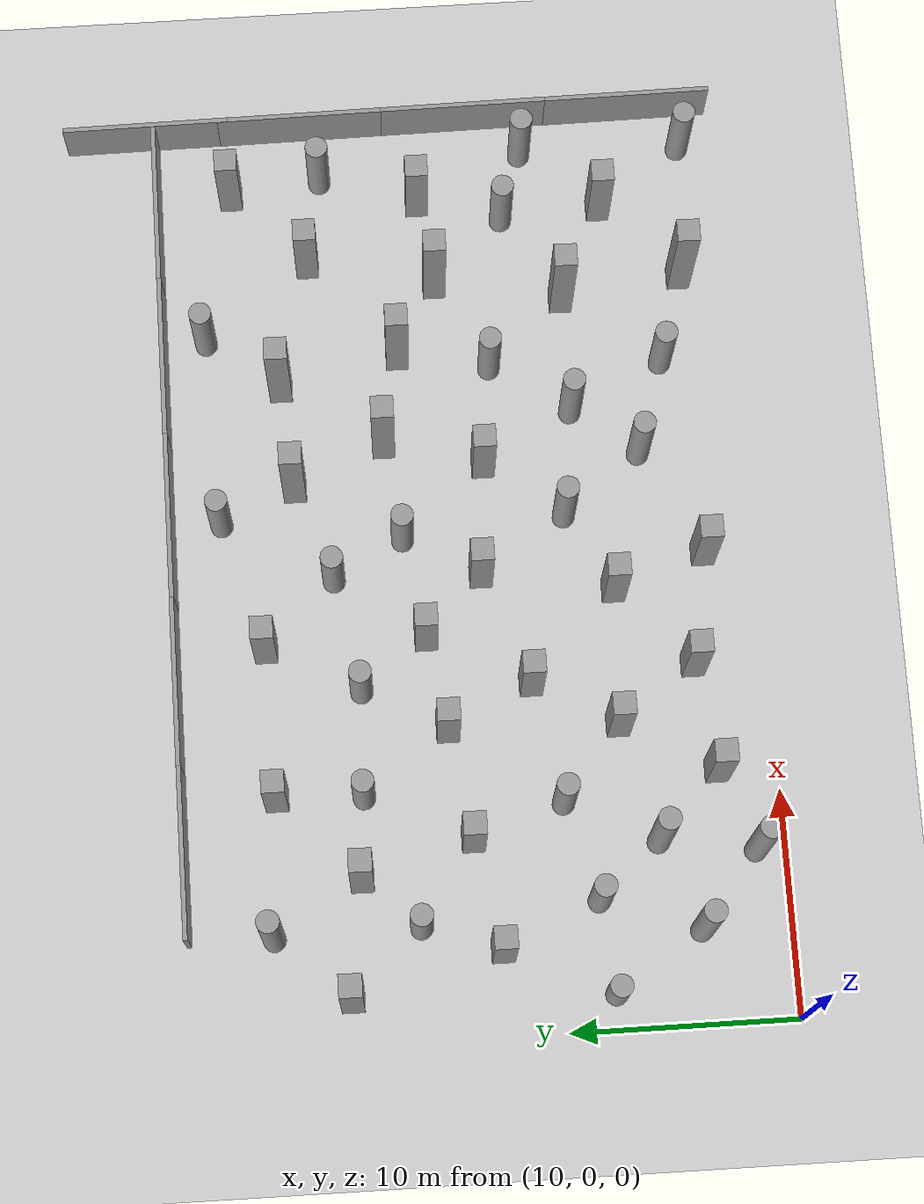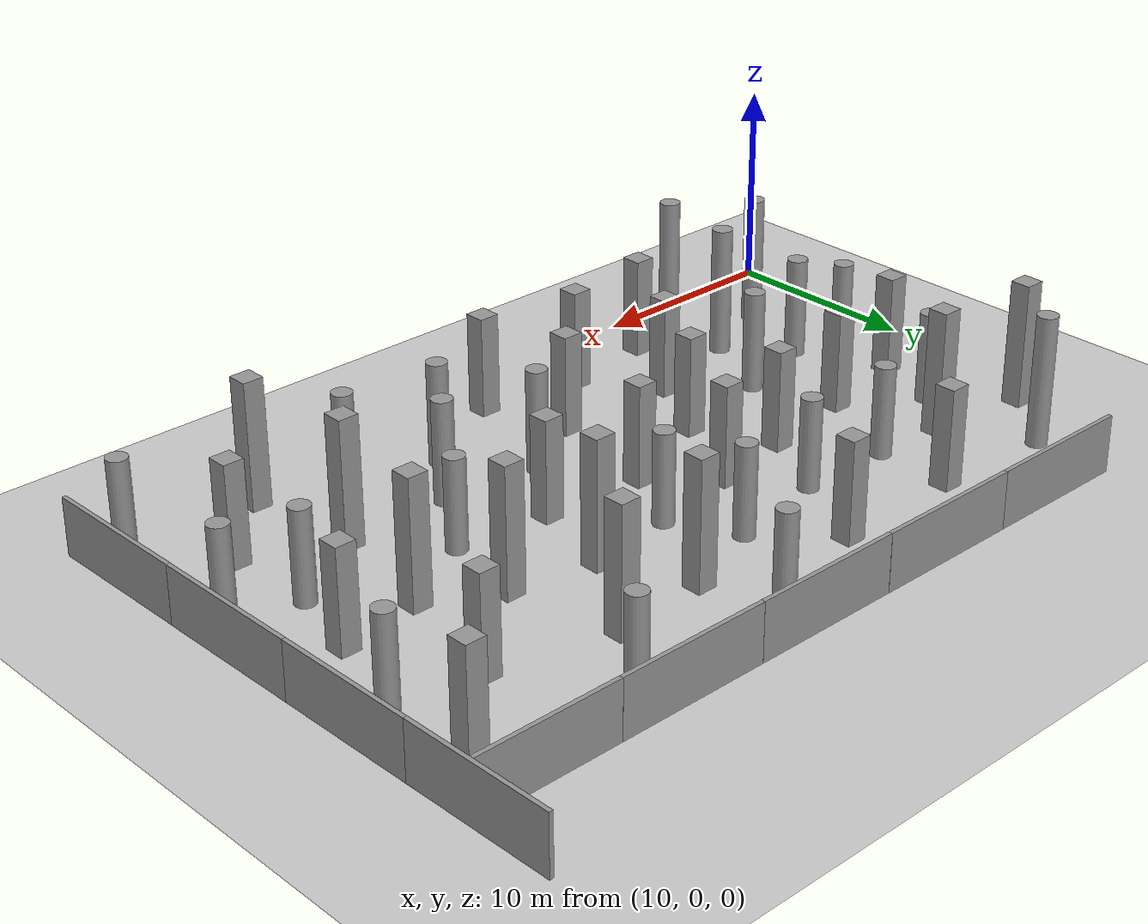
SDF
<sdf version="1.7">
 <world name="default">
  <model name="ground_plane">
   <static>1</static>
   <link name="link">
    <collision name="collision">
     <geometry><plane><normal>0 0 1</normal><size>400 400</size></plane></geometry>
     <surface><friction><ode><mu>100</mu><mu2>50</mu2></ode></friction></surface>
    </collision>
    <visual name="visual">
     <cast_shadows>0</cast_shadows>
     <geometry><plane><normal>0 0 1</normal><size>100 100</size></plane></geometry>
     <material>
      <script><uri>file://media/materials/scripts/gazebo.material</uri><name>Gazebo/Grey</name></script>
     </material>
    </visual>
   </link>
  </model>
  <model name="unit_cylinder_23">
   <pose>11.5428 7.81955 1.72625 1e-06 0 5.3e-05</pose>
   <link name="link">
    <inertial>
     <mass>1</mass>
     <inertia><ixx>0.145833</ixx><ixy>0</ixy><ixz>0</ixz><iyy>0.145833</iyy><iyz>0</iyz><izz>0.125</izz></inertia>
    </inertial>
    <collision name="collision">
     <geometry><cylinder><radius>0.5</radius><length>3.45257</length></cylinder></geometry>
    </collision>
    <visual name="visual">
     <geometry><cylinder><radius>0.5</radius><length>3.45257</length></cylinder></geometry>
     <material>
      <script><name>Gazebo/Grey</name><uri>file://media/materials/scripts/gazebo.material</uri></script>
     </material>
    </visual>
   </link>
  </model>
  <model name="unit_box_1_clone_2">
   <pose>13.6783 12.5927 2.48504 -2e-06 0 0.000428</pose>
   <link name="link">
    <inertial>
     <mass>1</mass>
     <inertia>
      <ixx>0.166667</ixx>
      <ixy>0</ixy>
      <ixz>0</ixz>
      <iyy>0.166667</iyy>
      <iyz>0</iyz>
      <izz>0.166667</izz>
     </inertia>
    </inertial>
    <collision name="collision"><geometry><box><size>1 1 4.97009</size></box></geometry></collision>
    <visual name="visual">
     <geometry><box><size>1 1 4.97009</size></box></geometry>
     <material>
      <script><name>Gazebo/Grey</name><uri>file://media/materials/scripts/gazebo.material</uri></script>
     </material>
    </visual>
   </link>
  </model>
  <model name="unit_box_1_clone_3">
   <pose>18.5455 13.5678 2.48504 -0 2e-06 -0.001973</pose>
   <link name="link">
    <inertial>
     <mass>1</mass>
     <inertia>
      <ixx>0.166667</ixx>
      <ixy>0</ixy>
      <ixz>0</ixz>
      <iyy>0.166667</iyy>
      <iyz>0</iyz>
      <izz>0.166667</izz>
     </inertia>
    </inertial>
    <collision name="collision"><geometry><box><size>1 1 4.97009</size></box></geometry></collision>
    <visual name="visual">
     <geometry><box><size>1 1 4.97009</size></box></geometry>
     <material>
      <script><name>Gazebo/Grey</name><uri>file://media/materials/scripts/gazebo.material</uri></script>
     </material>
    </visual>
   </link>
  </model>
  <model name="unit_box_1_clone_4">
   <pose>25.3258 10.5912 2.48504 2e-06 -0 8.3e-05</pose>
   <link name="link">
    <inertial>
     <mass>1</mass>
     <inertia>
      <ixx>0.166667</ixx>
      <ixy>0</ixy>
      <ixz>0</ixz>
      <iyy>0.166667</iyy>
      <iyz>0</iyz>
      <izz>0.166667</izz>
     </inertia>
    </inertial>
    <collision name="collision"><geometry><box><size>1 1 4.97009</size></box></geometry></collision>
    <visual name="visual">
     <geometry><box><size>1 1 4.97009</size></box></geometry>
     <material>
      <script><name>Gazebo/Grey</name><uri>file://media/materials/scripts/gazebo.material</uri></script>
     </material>
    </visual>
   </link>
  </model>
  <model name="unit_box_1_clone_5">
   <pose>23.4699 14.3709 2.48504 -0 2e-06 -0.000948</pose>
   <link name="link">
    <inertial>
     <mass>1</mass>
     <inertia>
      <ixx>0.166667</ixx>
      <ixy>0</ixy>
      <ixz>0</ixz>
      <iyy>0.166667</iyy>
      <iyz>0</iyz>
      <izz>0.166667</izz>
     </inertia>
    </inertial>
    <collision name="collision"><geometry><box><size>1 1 4.97009</size></box></geometry></collision>
    <visual name="visual">
     <geometry><box><size>1 1 4.97009</size></box></geometry>
     <material>
      <script><name>Gazebo/Grey</name><uri>file://media/materials/scripts/gazebo.material</uri></script>
     </material>
    </visual>
   </link>
  </model>
  <model name="unit_box_1_clone_6">
   <pose>30.3843 12.4735 2.48504 -2e-06 -0 -0.002073</pose>
   <link name="link">
    <inertial>
     <mass>1</mass>
     <inertia>
      <ixx>0.166667</ixx>
      <ixy>0</ixy>
      <ixz>0</ixz>
      <iyy>0.166667</iyy>
      <iyz>0</iyz>
      <izz>0.166667</izz>
     </inertia>
    </inertial>
    <collision name="collision"><geometry><box><size>1 1 4.97009</size></box></geometry></collision>
    <visual name="visual">
     <geometry><box><size>1 1 4.97009</size></box></geometry>
     <material>
      <script><name>Gazebo/Grey</name><uri>file://media/materials/scripts/gazebo.material</uri></script>
     </material>
    </visual>
   </link>
  </model>
  <model name="unit_box_1_clone_7">
   <pose>27.6522 15.0776 2.48504 -0 -2e-06 -0.002553</pose>
   <link name="link">
    <inertial>
     <mass>1</mass>
     <inertia>
      <ixx>0.166667</ixx>
      <ixy>0</ixy>
      <ixz>0</ixz>
      <iyy>0.166667</iyy>
      <iyz>0</iyz>
      <izz>0.166667</izz>
     </inertia>
    </inertial>
    <collision name="collision"><geometry><box><size>1 1 4.97009</size></box></geometry></collision>
    <visual name="visual">
     <geometry><box><size>1 1 4.97009</size></box></geometry>
     <material>
      <script><name>Gazebo/Grey</name><uri>file://media/materials/scripts/gazebo.material</uri></script>
     </material>
    </visual>
   </link>
  </model>
  <model name="unit_box_1_clone_8">
   <pose>35.4718 12.045 2.48504 2e-06 -0 0.000921</pose>
   <link name="link">
    <inertial>
     <mass>1</mass>
     <inertia>
      <ixx>0.166667</ixx>
      <ixy>0</ixy>
      <ixz>0</ixz>
      <iyy>0.166667</iyy>
      <iyz>0</iyz>
      <izz>0.166667</izz>
     </inertia>
    </inertial>
    <collision name="collision"><geometry><box><size>1 1 4.97009</size></box></geometry></collision>
    <visual name="visual">
     <geometry><box><size>1 1 4.97009</size></box></geometry>
     <material>
      <script><name>Gazebo/Grey</name><uri>file://media/materials/scripts/gazebo.material</uri></script>
     </material>
    </visual>
   </link>
  </model>
  <model name="unit_cylinder_27_clone">
   <pose>14.8751 16.0271 2.257 2e-06 -0 -0.000756</pose>
   <link name="link">
    <inertial>
     <mass>1</mass>
     <inertia><ixx>0.145833</ixx><ixy>0</ixy><ixz>0</ixz><iyy>0.145833</iyy><iyz>0</iyz><izz>0.125</izz></inertia>
    </inertial>
    <collision name="collision">
     <geometry><cylinder><radius>0.5</radius><length>4.51407</length></cylinder></geometry>
    </collision>
    <visual name="visual">
     <geometry><cylinder><radius>0.5</radius><length>4.51407</length></cylinder></geometry>
     <material>
      <script><name>Gazebo/Grey</name><uri>file://media/materials/scripts/gazebo.material</uri></script>
     </material>
    </visual>
   </link>
  </model>
  <model name="unit_cylinder_27_clone_1">
   <pose>20.7051 18.1973 2.257 2e-06 -0 -0.000715</pose>
   <link name="link">
    <inertial>
     <mass>1</mass>
     <inertia><ixx>0.145833</ixx><ixy>0</ixy><ixz>0</ixz><iyy>0.145833</iyy><iyz>0</iyz><izz>0.125</izz></inertia>
    </inertial>
    <collision name="collision">
     <geometry><cylinder><radius>0.5</radius><length>4.51407</length></cylinder></geometry>
    </collision>
    <visual name="visual">
     <geometry><cylinder><radius>0.5</radius><length>4.51407</length></cylinder></geometry>
     <material>
      <script><name>Gazebo/Grey</name><uri>file://media/materials/scripts/gazebo.material</uri></script>
     </material>
    </visual>
   </link>
  </model>
  <model name="unit_cylinder_27_clone_2">
   <pose>32.2373 15.8432 2.257 2e-06 0 -0.000722</pose>
   <link name="link">
    <inertial>
     <mass>1</mass>
     <inertia><ixx>0.145833</ixx><ixy>0</ixy><ixz>0</ixz><iyy>0.145833</iyy><iyz>0</iyz><izz>0.125</izz></inertia>
    </inertial>
    <collision name="collision">
     <geometry><cylinder><radius>0.5</radius><length>4.51407</length></cylinder></geometry>
    </collision>
    <visual name="visual">
     <geometry><cylinder><radius>0.5</radius><length>4.51407</length></cylinder></geometry>
     <material>
      <script><name>Gazebo/Grey</name><uri>file://media/materials/scripts/gazebo.material</uri></script>
     </material>
    </visual>
   </link>
  </model>
  <model name="unit_cylinder_27_clone_3">
   <pose>25.4299 18.0464 2.257 2e-06 0 -0.000741</pose>
   <link name="link">
    <inertial>
     <mass>1</mass>
     <inertia><ixx>0.145833</ixx><ixy>0</ixy><ixz>0</ixz><iyy>0.145833</iyy><iyz>0</iyz><izz>0.125</izz></inertia>
    </inertial>
    <collision name="collision">
     <geometry><cylinder><radius>0.5</radius><length>4.51407</length></cylinder></geometry>
    </collision>
    <visual name="visual">
     <geometry><cylinder><radius>0.5</radius><length>4.51407</length></cylinder></geometry>
     <material>
      <script><name>Gazebo/Grey</name><uri>file://media/materials/scripts/gazebo.material</uri></script>
     </material>
    </visual>
   </link>
  </model>
  <model name="unit_cylinder_27_clone_5">
   <pose>30.5383 18.9927 2.257 2e-06 0 -0.000743</pose>
   <link name="link">
    <inertial>
     <mass>1</mass>
     <inertia><ixx>0.145833</ixx><ixy>0</ixy><ixz>0</ixz><iyy>0.145833</iyy><iyz>0</iyz><izz>0.125</izz></inertia>
    </inertial>
    <collision name="collision">
     <geometry><cylinder><radius>0.5</radius><length>4.51407</length></cylinder></geometry>
    </collision>
    <visual name="visual">
     <geometry><cylinder><radius>0.5</radius><length>4.51407</length></cylinder></geometry>
     <material>
      <script><name>Gazebo/Grey</name><uri>file://media/materials/scripts/gazebo.material</uri></script>
     </material>
    </visual>
   </link>
  </model>
  <model name="unit_cylinder_27_clone_6">
   <pose>40.0713 11.4687 2.257 2e-06 -0 -0.000727</pose>
   <link name="link">
    <inertial>
     <mass>1</mass>
     <inertia><ixx>0.145833</ixx><ixy>0</ixy><ixz>0</ixz><iyy>0.145833</iyy><iyz>0</iyz><izz>0.125</izz></inertia>
    </inertial>
    <collision name="collision">
     <geometry><cylinder><radius>0.5</radius><length>4.51407</length></cylinder></geometry>
    </collision>
    <visual name="visual">
     <geometry><cylinder><radius>0.5</radius><length>4.51407</length></cylinder></geometry>
     <material>
      <script><name>Gazebo/Grey</name><uri>file://media/materials/scripts/gazebo.material</uri></script>
     </material>
    </visual>
   </link>
  </model>
  <model name="unit_cylinder_27_clone_7">
   <pose>39.8766 3.70131 2.257 2e-06 0 -0.000729</pose>
   <link name="link">
    <inertial>
     <mass>1</mass>
     <inertia><ixx>0.145833</ixx><ixy>0</ixy><ixz>0</ixz><iyy>0.145833</iyy><iyz>0</iyz><izz>0.125</izz></inertia>
    </inertial>
    <collision name="collision">
     <geometry><cylinder><radius>0.5</radius><length>4.51407</length></cylinder></geometry>
    </collision>
    <visual name="visual">
     <geometry><cylinder><radius>0.5</radius><length>4.51407</length></cylinder></geometry>
     <material>
      <script><name>Gazebo/Grey</name><uri>file://media/materials/scripts/gazebo.material</uri></script>
     </material>
    </visual>
   </link>
  </model>
  <model name="unit_box_8_clone_1">
   <pose>43.9322 2.54455 3.10477 -0 1e-06 -0.00839</pose>
   <link name="link">
    <inertial>
     <mass>1</mass>
     <inertia>
      <ixx>0.166667</ixx>
      <ixy>0</ixy>
      <ixz>0</ixz>
      <iyy>0.166667</iyy>
      <iyz>0</iyz>
      <izz>0.166667</izz>
     </inertia>
    </inertial>
    <collision name="collision"><geometry><box><size>1 1 6.20954</size></box></geometry></collision>
    <visual name="visual">
     <geometry><box><size>1 1 6.20954</size></box></geometry>
     <material>
      <script><name>Gazebo/Grey</name><uri>file://media/materials/scripts/gazebo.material</uri></script>
     </material>
    </visual>
   </link>
  </model>
  <model name="unit_box_8_clone_2">
   <pose>43.1123 8.00654 3.10477 2e-06 2e-06 -0.014033</pose>
   <link name="link">
    <inertial>
     <mass>1</mass>
     <inertia>
      <ixx>0.166667</ixx>
      <ixy>0</ixy>
      <ixz>0</ixz>
      <iyy>0.166667</iyy>
      <iyz>0</iyz>
      <izz>0.166667</izz>
     </inertia>
    </inertial>
    <collision name="collision"><geometry><box><size>1 1 6.20954</size></box></geometry></collision>
    <visual name="visual">
     <geometry><box><size>1 1 6.20954</size></box></geometry>
     <material>
      <script><name>Gazebo/Grey</name><uri>file://media/materials/scripts/gazebo.material</uri></script>
     </material>
    </visual>
   </link>
  </model>
  <model name="unit_box_8_clone_4">
   <pose>36.6569 16.444 3.10477 0 -5e-06 -0.00826</pose>
   <link name="link">
    <inertial>
     <mass>1</mass>
     <inertia>
      <ixx>0.166667</ixx>
      <ixy>0</ixy>
      <ixz>0</ixz>
      <iyy>0.166667</iyy>
      <iyz>0</iyz>
      <izz>0.166667</izz>
     </inertia>
    </inertial>
    <collision name="collision"><geometry><box><size>1 1 6.20954</size></box></geometry></collision>
    <visual name="visual">
     <geometry><box><size>1 1 6.20954</size></box></geometry>
     <material>
      <script><name>Gazebo/Grey</name><uri>file://media/materials/scripts/gazebo.material</uri></script>
     </material>
    </visual>
   </link>
  </model>
  <model name="unit_box_8_clone_5">
   <pose>34.8228 20.5181 3.10477 1e-06 0 -0.007359</pose>
   <link name="link">
    <inertial>
     <mass>1</mass>
     <inertia>
      <ixx>0.166667</ixx>
      <ixy>0</ixy>
      <ixz>0</ixz>
      <iyy>0.166667</iyy>
      <iyz>0</iyz>
      <izz>0.166667</izz>
     </inertia>
    </inertial>
    <collision name="collision"><geometry><box><size>1 1 6.20954</size></box></geometry></collision>
    <visual name="visual">
     <geometry><box><size>1 1 6.20954</size></box></geometry>
     <material>
      <script><name>Gazebo/Grey</name><uri>file://media/materials/scripts/gazebo.material</uri></script>
     </material>
    </visual>
   </link>
  </model>
  <model name="unit_box_8_clone_6">
   <pose>40.8136 15.5915 3.10477 0 -1e-06 -0.005825</pose>
   <link name="link">
    <inertial>
     <mass>1</mass>
     <inertia>
      <ixx>0.166667</ixx>
      <ixy>0</ixy>
      <ixz>0</ixz>
      <iyy>0.166667</iyy>
      <iyz>0</iyz>
      <izz>0.166667</izz>
     </inertia>
    </inertial>
    <collision name="collision"><geometry><box><size>1 1 6.20954</size></box></geometry></collision>
    <visual name="visual">
     <geometry><box><size>1 1 6.20954</size></box></geometry>
     <material>
      <script><name>Gazebo/Grey</name><uri>file://media/materials/scripts/gazebo.material</uri></script>
     </material>
    </visual>
   </link>
  </model>
  <model name="unit_box_8_clone_7">
   <pose>39.5843 20.9218 3.10477 -0 1e-06 -0.008927</pose>
   <link name="link">
    <inertial>
     <mass>1</mass>
     <inertia>
      <ixx>0.166667</ixx>
      <ixy>0</ixy>
      <ixz>0</ixz>
      <iyy>0.166667</iyy>
      <iyz>0</iyz>
      <izz>0.166667</izz>
     </inertia>
    </inertial>
    <collision name="collision"><geometry><box><size>1 1 6.20954</size></box></geometry></collision>
    <visual name="visual">
     <geometry><box><size>1 1 6.20954</size></box></geometry>
     <material>
      <script><name>Gazebo/Grey</name><uri>file://media/materials/scripts/gazebo.material</uri></script>
     </material>
    </visual>
   </link>
  </model>
  <model name="unit_box_8_clone_8">
   <pose>44.1425 13.7168 3.10477 1e-06 -0 -0.009169</pose>
   <link name="link">
    <inertial>
     <mass>1</mass>
     <inertia>
      <ixx>0.166667</ixx>
      <ixy>0</ixy>
      <ixz>0</ixz>
      <iyy>0.166667</iyy>
      <iyz>0</iyz>
      <izz>0.166667</izz>
     </inertia>
    </inertial>
    <collision name="collision"><geometry><box><size>1 1 6.20954</size></box></geometry></collision>
    <visual name="visual">
     <geometry><box><size>1 1 6.20954</size></box></geometry>
     <material>
      <script><name>Gazebo/Grey</name><uri>file://media/materials/scripts/gazebo.material</uri></script>
     </material>
    </visual>
   </link>
  </model>
  <model name="unit_box_8_clone_9">
   <pose>17.0789 18.4775 3.10477 0 -1e-06 -0.010304</pose>
   <link name="link">
    <inertial>
     <mass>1</mass>
     <inertia>
      <ixx>0.166667</ixx>
      <ixy>0</ixy>
      <ixz>0</ixz>
      <iyy>0.166667</iyy>
      <iyz>0</iyz>
      <izz>0.166667</izz>
     </inertia>
    </inertial>
    <collision name="collision"><geometry><box><size>1 1 6.20954</size></box></geometry></collision>
    <visual name="visual">
     <geometry><box><size>1 1 6.20954</size></box></geometry>
     <material>
      <script><name>Gazebo/Grey</name><uri>file://media/materials/scripts/gazebo.material</uri></script>
     </material>
    </visual>
   </link>
  </model>
  <model name="unit_box_8_clone_10">
   <pose>11.9286 19.1593 3.10477 -0 5e-06 -0.00807</pose>
   <link name="link">
    <inertial>
     <mass>1</mass>
     <inertia>
      <ixx>0.166667</ixx>
      <ixy>0</ixy>
      <ixz>0</ixz>
      <iyy>0.166667</iyy>
      <iyz>0</iyz>
      <izz>0.166667</izz>
     </inertia>
    </inertial>
    <collision name="collision"><geometry><box><size>1 1 6.20954</size></box></geometry></collision>
    <visual name="visual">
     <geometry><box><size>1 1 6.20954</size></box></geometry>
     <material>
      <script><name>Gazebo/Grey</name><uri>file://media/materials/scripts/gazebo.material</uri></script>
     </material>
    </visual>
   </link>
  </model>
  <model name="unit_cylinder_17_clone_15">
   <pose>14.7277 22.4029 3.23034 3e-06 -1e-06 0.00718</pose>
   <link name="link">
    <inertial>
     <mass>1</mass>
     <inertia><ixx>0.145833</ixx><ixy>0</ixy><ixz>0</ixz><iyy>0.145833</iyy><iyz>0</iyz><izz>0.125</izz></inertia>
    </inertial>
    <collision name="collision">
     <geometry><cylinder><radius>0.5</radius><length>6.46075</length></cylinder></geometry>
    </collision>
    <visual name="visual">
     <geometry><cylinder><radius>0.5</radius><length>6.46075</length></cylinder></geometry>
     <material>
      <script><name>Gazebo/Grey</name><uri>file://media/materials/scripts/gazebo.material</uri></script>
     </material>
    </visual>
   </link>
  </model>
  <model name="unit_box_1_clone_3_clone">
   <pose>20.8351 21.999 2.48504 0 2e-06 -0.000957</pose>
   <link name="link">
    <inertial>
     <mass>1</mass>
     <inertia>
      <ixx>0.166667</ixx>
      <ixy>0</ixy>
      <ixz>0</ixz>
      <iyy>0.166667</iyy>
      <iyz>0</iyz>
      <izz>0.166667</izz>
     </inertia>
    </inertial>
    <collision name="collision"><geometry><box><size>1 1 4.97009</size></box></geometry></collision>
    <visual name="visual">
     <geometry><box><size>1 1 4.97009</size></box></geometry>
     <material>
      <script><name>Gazebo/Grey</name><uri>file://media/materials/scripts/gazebo.material</uri></script>
     </material>
    </visual>
   </link>
  </model>
  <model name="unit_box_1_clone_3_clone_0">
   <pose>27.5127 22.1575 2.48504 2e-06 0 -0.004486</pose>
   <link name="link">
    <inertial>
     <mass>1</mass>
     <inertia>
      <ixx>0.166667</ixx>
      <ixy>0</ixy>
      <ixz>0</ixz>
      <iyy>0.166667</iyy>
      <iyz>0</iyz>
      <izz>0.166667</izz>
     </inertia>
    </inertial>
    <collision name="collision"><geometry><box><size>1 1 4.97009</size></box></geometry></collision>
    <visual name="visual">
     <geometry><box><size>1 1 4.97009</size></box></geometry>
     <material>
      <script><name>Gazebo/Grey</name><uri>file://media/materials/scripts/gazebo.material</uri></script>
     </material>
    </visual>
   </link>
  </model>
  <model name="unit_box_1_clone_3_clone_1">
   <pose>45.4529 19.4287 2.48504 2e-06 -0 -0.002299</pose>
   <link name="link">
    <inertial>
     <mass>1</mass>
     <inertia>
      <ixx>0.166667</ixx>
      <ixy>0</ixy>
      <ixz>0</ixz>
      <iyy>0.166667</iyy>
      <iyz>0</iyz>
      <izz>0.166667</izz>
     </inertia>
    </inertial>
    <collision name="collision"><geometry><box><size>1 1 4.97009</size></box></geometry></collision>
    <visual name="visual">
     <geometry><box><size>1 1 4.97009</size></box></geometry>
     <material>
      <script><name>Gazebo/Grey</name><uri>file://media/materials/scripts/gazebo.material</uri></script>
     </material>
    </visual>
   </link>
  </model>
  <model name="grey_wall_clone_6_clone_1">
   <static>1</static>
   <link name="link">
    <pose>0 0 1.4 0 -0 0</pose>
    <collision name="collision"><geometry><box><size>7.5 0.2 2.8</size></box></geometry></collision>
    <visual name="visual">
     <cast_shadows>0</cast_shadows>
     <geometry><box><size>7.5 0.2 2.8</size></box></geometry>
     <material>
      <script>
       <uri>model://grey_wall/materials/scripts</uri>
       <uri>model://grey_wall/materials/textures</uri>
       <name>vrc/grey_wall</name>
      </script>
     </material>
    </visual>
   </link>
   <pose>51.9899 4.42276 0 0 0 -1.56033</pose>
  </model>
  <model name="grey_wall_clone_6_clone_2">
   <static>1</static>
   <link name="link">
    <pose>0 0 1.4 0 -0 0</pose>
    <collision name="collision"><geometry><box><size>7.5 0.2 2.8</size></box></geometry></collision>
    <visual name="visual">
     <cast_shadows>0</cast_shadows>
     <geometry><box><size>7.5 0.2 2.8</size></box></geometry>
     <material>
      <script>
       <uri>model://grey_wall/materials/scripts</uri>
       <uri>model://grey_wall/materials/textures</uri>
       <name>vrc/grey_wall</name>
      </script>
     </material>
    </visual>
   </link>
   <pose>51.9196 11.9192 0 0 0 -1.56033</pose>
  </model>
  <model name="grey_wall_clone_6_clone_3">
   <static>1</static>
   <link name="link">
    <pose>0 0 1.4 0 -0 0</pose>
    <collision name="collision"><geometry><box><size>7.5 0.2 2.8</size></box></geometry></collision>
    <visual name="visual">
     <cast_shadows>0</cast_shadows>
     <geometry><box><size>7.5 0.2 2.8</size></box></geometry>
     <material>
      <script>
       <uri>model://grey_wall/materials/scripts</uri>
       <uri>model://grey_wall/materials/textures</uri>
       <name>vrc/grey_wall</name>
      </script>
     </material>
    </visual>
   </link>
   <pose>51.8424 19.3921 0 0 0 -1.56033</pose>
  </model>
  <model name="grey_wall_clone_6_clone_11">
   <static>1</static>
   <link name="link">
    <pose>0 0 1.4 0 -0 0</pose>
    <collision name="collision"><geometry><box><size>7.5 0.2 2.8</size></box></geometry></collision>
    <visual name="visual">
     <cast_shadows>0</cast_shadows>
     <geometry><box><size>7.5 0.2 2.8</size></box></geometry>
     <material>
      <script>
       <uri>model://grey_wall/materials/scripts</uri>
       <uri>model://grey_wall/materials/textures</uri>
       <name>vrc/grey_wall</name>
      </script>
     </material>
    </visual>
   </link>
   <pose>51.7734 26.4227 0.01006 0 0 -1.56033</pose>
  </model>
  <model name="grey_wall_clone_5_clone_2">
   <static>1</static>
   <link name="link">
    <pose>0 0 1.4 0 -0 0</pose>
    <collision name="collision"><geometry><box><size>7.5 0.2 2.8</size></box></geometry></collision>
    <visual name="visual">
     <cast_shadows>0</cast_shadows>
     <geometry><box><size>7.5 0.2 2.8</size></box></geometry>
     <material>
      <script>
       <uri>model://grey_wall/materials/scripts</uri>
       <uri>model://grey_wall/materials/textures</uri>
       <name>vrc/grey_wall</name>
      </script>
     </material>
    </visual>
   </link>
   <pose>18.3939 26.0838 0 0 -0 0</pose>
  </model>
  <model name="grey_wall_clone_5_clone_3">
   <static>1</static>
   <link name="link">
    <pose>0 0 1.4 0 -0 0</pose>
    <collision name="collision"><geometry><box><size>7.5 0.2 2.8</size></box></geometry></collision>
    <visual name="visual">
     <cast_shadows>0</cast_shadows>
     <geometry><box><size>7.5 0.2 2.8</size></box></geometry>
     <material>
      <script>
       <uri>model://grey_wall/materials/scripts</uri>
       <uri>model://grey_wall/materials/textures</uri>
       <name>vrc/grey_wall</name>
      </script>
     </material>
    </visual>
   </link>
   <pose>25.8663 26.0879 0 0 -0 0</pose>
  </model>
  <model name="grey_wall_clone_5_clone_4">
   <static>1</static>
   <link name="link">
    <pose>0 0 1.4 0 -0 0</pose>
    <collision name="collision"><geometry><box><size>7.5 0.2 2.8</size></box></geometry></collision>
    <visual name="visual">
     <cast_shadows>0</cast_shadows>
     <geometry><box><size>7.5 0.2 2.8</size></box></geometry>
     <material>
      <script>
       <uri>model://grey_wall/materials/scripts</uri>
       <uri>model://grey_wall/materials/textures</uri>
       <name>vrc/grey_wall</name>
      </script>
     </material>
    </visual>
   </link>
   <pose>33.3419 26.0791 0 0 -0 0</pose>
  </model>
  <model name="grey_wall_clone_5_clone_5">
   <static>1</static>
   <link name="link">
    <pose>0 0 1.4 0 -0 0</pose>
    <collision name="collision"><geometry><box><size>7.5 0.2 2.8</size></box></geometry></collision>
    <visual name="visual">
     <cast_shadows>0</cast_shadows>
     <geometry><box><size>7.5 0.2 2.8</size></box></geometry>
     <material>
      <script>
       <uri>model://grey_wall/materials/scripts</uri>
       <uri>model://grey_wall/materials/textures</uri>
       <name>vrc/grey_wall</name>
      </script>
     </material>
    </visual>
   </link>
   <pose>40.8293 26.0766 0 0 -0 0</pose>
  </model>
  <model name="grey_wall_clone_5_clone_6">
   <static>1</static>
   <link name="link">
    <pose>0 0 1.4 0 -0 0</pose>
    <collision name="collision"><geometry><box><size>7.5 0.2 2.8</size></box></geometry></collision>
    <visual name="visual">
     <cast_shadows>0</cast_shadows>
     <geometry><box><size>7.5 0.2 2.8</size></box></geometry>
     <material>
      <script>
       <uri>model://grey_wall/materials/scripts</uri>
       <uri>model://grey_wall/materials/textures</uri>
       <name>vrc/grey_wall</name>
      </script>
     </material>
    </visual>
   </link>
   <pose>48.107 26.0755 0 0 -0 0</pose>
  </model>
  <model name="unit_box_1_clone_3_clone_1_clone">
   <pose>48.1809 14.2713 2.48504 -0 2e-06 -0.001968</pose>
   <link name="link">
    <inertial>
     <mass>1</mass>
     <inertia>
      <ixx>0.166667</ixx>
      <ixy>0</ixy>
      <ixz>0</ixz>
      <iyy>0.166667</iyy>
      <iyz>0</iyz>
      <izz>0.166667</izz>
     </inertia>
    </inertial>
    <collision name="collision"><geometry><box><size>1 1 4.97009</size></box></geometry></collision>
    <visual name="visual">
     <geometry><box><size>1 1 4.97009</size></box></geometry>
     <material>
      <script><name>Gazebo/Grey</name><uri>file://media/materials/scripts/gazebo.material</uri></script>
     </material>
    </visual>
   </link>
  </model>
  <model name="unit_box_1_clone_3_clone_1_clone_0">
   <pose>47.4676 5.98536 2.48504 0 2e-06 -0.000954</pose>
   <link name="link">
    <inertial>
     <mass>1</mass>
     <inertia>
      <ixx>0.166667</ixx>
      <ixy>0</ixy>
      <ixz>0</ixz>
      <iyy>0.166667</iyy>
      <iyz>0</iyz>
      <izz>0.166667</izz>
     </inertia>
    </inertial>
    <collision name="collision"><geometry><box><size>1 1 4.97009</size></box></geometry></collision>
    <visual name="visual">
     <geometry><box><size>1 1 4.97009</size></box></geometry>
     <material>
      <script><name>Gazebo/Grey</name><uri>file://media/materials/scripts/gazebo.material</uri></script>
     </material>
    </visual>
   </link>
  </model>
  <model name="unit_box_1_clone_3_clone_1_clone_1">
   <pose>48.9633 22.7609 2.48504 -0 2e-06 -0.004485</pose>
   <link name="link">
    <inertial>
     <mass>1</mass>
     <inertia>
      <ixx>0.166667</ixx>
      <ixy>0</ixy>
      <ixz>0</ixz>
      <iyy>0.166667</iyy>
      <iyz>0</iyz>
      <izz>0.166667</izz>
     </inertia>
    </inertial>
    <collision name="collision"><geometry><box><size>1 1 4.97009</size></box></geometry></collision>
    <visual name="visual">
     <geometry><box><size>1 1 4.97009</size></box></geometry>
     <material>
      <script><name>Gazebo/Grey</name><uri>file://media/materials/scripts/gazebo.material</uri></script>
     </material>
    </visual>
   </link>
  </model>
  <model name="unit_cylinder_27_clone_7_clone_7">
   <pose>50.206 2.07587 2.257 2e-06 -0 -0.000737</pose>
   <link name="link">
    <inertial>
     <mass>1</mass>
     <inertia><ixx>0.145833</ixx><ixy>0</ixy><ixz>0</ixz><iyy>0.145833</iyy><iyz>0</iyz><izz>0.125</izz></inertia>
    </inertial>
    <collision name="collision">
     <geometry><cylinder><radius>0.5</radius><length>4.51407</length></cylinder></geometry>
    </collision>
    <visual name="visual">
     <geometry><cylinder><radius>0.5</radius><length>4.51407</length></cylinder></geometry>
     <material>
      <script><name>Gazebo/Grey</name><uri>file://media/materials/scripts/gazebo.material</uri></script>
     </material>
    </visual>
   </link>
  </model>
  <model name="unit_cylinder_27_clone_7_clone_8">
   <pose>47.1853 10.4605 2.257 2e-06 -0 -0.000736</pose>
   <link name="link">
    <inertial>
     <mass>1</mass>
     <inertia><ixx>0.145833</ixx><ixy>0</ixy><ixz>0</ixz><iyy>0.145833</iyy><iyz>0</iyz><izz>0.125</izz></inertia>
    </inertial>
    <collision name="collision">
     <geometry><cylinder><radius>0.5</radius><length>4.51407</length></cylinder></geometry>
    </collision>
    <visual name="visual">
     <geometry><cylinder><radius>0.5</radius><length>4.51407</length></cylinder></geometry>
     <material>
      <script><name>Gazebo/Grey</name><uri>file://media/materials/scripts/gazebo.material</uri></script>
     </material>
    </visual>
   </link>
  </model>
  <model name="unit_cylinder_27_clone_7_clone_9">
   <pose>33.3846 23.8758 2.257 2e-06 0 -0.000739</pose>
   <link name="link">
    <inertial>
     <mass>1</mass>
     <inertia><ixx>0.145833</ixx><ixy>0</ixy><ixz>0</ixz><iyy>0.145833</iyy><iyz>0</iyz><izz>0.125</izz></inertia>
    </inertial>
    <collision name="collision">
     <geometry><cylinder><radius>0.5</radius><length>4.51407</length></cylinder></geometry>
    </collision>
    <visual name="visual">
     <geometry><cylinder><radius>0.5</radius><length>4.51407</length></cylinder></geometry>
     <material>
      <script><name>Gazebo/Grey</name><uri>file://media/materials/scripts/gazebo.material</uri></script>
     </material>
    </visual>
   </link>
  </model>
  <model name="unit_cylinder_27_clone_7_clone_10">
   <pose>41.9817 24.2071 2.257 2e-06 -0 -0.000737</pose>
   <link name="link">
    <inertial>
     <mass>1</mass>
     <inertia><ixx>0.145833</ixx><ixy>0</ixy><ixz>0</ixz><iyy>0.145833</iyy><iyz>0</iyz><izz>0.125</izz></inertia>
    </inertial>
    <collision name="collision">
     <geometry><cylinder><radius>0.5</radius><length>4.51407</length></cylinder></geometry>
    </collision>
    <visual name="visual">
     <geometry><cylinder><radius>0.5</radius><length>4.51407</length></cylinder></geometry>
     <material>
      <script><name>Gazebo/Grey</name><uri>file://media/materials/scripts/gazebo.material</uri></script>
     </material>
    </visual>
   </link>
  </model>
  <model name="unit_cylinder_27_clone_7_clone_11">
   <pose>50.3248 9.40662 2.257 2e-06 0 -0.000734</pose>
   <link name="link">
    <inertial>
     <mass>1</mass>
     <inertia><ixx>0.145833</ixx><ixy>0</ixy><ixz>0</ixz><iyy>0.145833</iyy><iyz>0</iyz><izz>0.125</izz></inertia>
    </inertial>
    <collision name="collision">
     <geometry><cylinder><radius>0.5</radius><length>4.51407</length></cylinder></geometry>
    </collision>
    <visual name="visual">
     <geometry><cylinder><radius>0.5</radius><length>4.51407</length></cylinder></geometry>
     <material>
      <script><name>Gazebo/Grey</name><uri>file://media/materials/scripts/gazebo.material</uri></script>
     </material>
    </visual>
   </link>
  </model>
  <model name="unit_cylinder_27_clone_4_clone_7">
   <pose>49.5203 18.6774 2.257 2e-06 0 -0.000751</pose>
   <link name="link">
    <inertial>
     <mass>1</mass>
     <inertia><ixx>0.145833</ixx><ixy>0</ixy><ixz>0</ixz><iyy>0.145833</iyy><iyz>0</iyz><izz>0.125</izz></inertia>
    </inertial>
    <collision name="collision">
     <geometry><cylinder><radius>0.5</radius><length>4.51407</length></cylinder></geometry>
    </collision>
    <visual name="visual">
     <geometry><cylinder><radius>0.5</radius><length>4.51407</length></cylinder></geometry>
     <material>
      <script><name>Gazebo/Grey</name><uri>file://media/materials/scripts/gazebo.material</uri></script>
     </material>
    </visual>
   </link>
  </model>
  <model name="unit_cylinder_11_clone_2">
   <pose>15.5757 8.27866 2.51349 2e-06 0 -0.000588</pose>
   <link name="link">
    <inertial>
     <mass>1</mass>
     <inertia><ixx>0.145833</ixx><ixy>0</ixy><ixz>0</ixz><iyy>0.145833</iyy><iyz>0</iyz><izz>0.125</izz></inertia>
    </inertial>
    <collision name="collision">
     <geometry><cylinder><radius>0.5</radius><length>5.02706</length></cylinder></geometry>
    </collision>
    <visual name="visual">
     <geometry><cylinder><radius>0.5</radius><length>5.02706</length></cylinder></geometry>
     <material>
      <script><name>Gazebo/Grey</name><uri>file://media/materials/scripts/gazebo.material</uri></script>
     </material>
    </visual>
   </link>
  </model>
  <model name="unit_cylinder_11_clone_3">
   <pose>19.9404 9.52246 2.51349 2e-06 -0 -0.000587</pose>
   <link name="link">
    <inertial>
     <mass>1</mass>
     <inertia><ixx>0.145833</ixx><ixy>0</ixy><ixz>0</ixz><iyy>0.145833</iyy><iyz>0</iyz><izz>0.125</izz></inertia>
    </inertial>
    <collision name="collision">
     <geometry><cylinder><radius>0.5</radius><length>5.02706</length></cylinder></geometry>
    </collision>
    <visual name="visual">
     <geometry><cylinder><radius>0.5</radius><length>5.02706</length></cylinder></geometry>
     <material>
      <script><name>Gazebo/Grey</name><uri>file://media/materials/scripts/gazebo.material</uri></script>
     </material>
    </visual>
   </link>
  </model>
  <model name="unit_cylinder_11_clone_4">
   <pose>37.7681 7.95308 2.51349 2e-06 0 -0.000586</pose>
   <link name="link">
    <inertial>
     <mass>1</mass>
     <inertia><ixx>0.145833</ixx><ixy>0</ixy><ixz>0</ixz><iyy>0.145833</iyy><iyz>0</iyz><izz>0.125</izz></inertia>
    </inertial>
    <collision name="collision">
     <geometry><cylinder><radius>0.5</radius><length>5.02706</length></cylinder></geometry>
    </collision>
    <visual name="visual">
     <geometry><cylinder><radius>0.5</radius><length>5.02706</length></cylinder></geometry>
     <material>
      <script><name>Gazebo/Grey</name><uri>file://media/materials/scripts/gazebo.material</uri></script>
     </material>
    </visual>
   </link>
  </model>
  <model name="unit_cylinder_11_clone_5">
   <pose>32.9119 8.58379 2.51349 2e-06 -0 -0.000587</pose>
   <link name="link">
    <inertial>
     <mass>1</mass>
     <inertia><ixx>0.145833</ixx><ixy>0</ixy><ixz>0</ixz><iyy>0.145833</iyy><iyz>0</iyz><izz>0.125</izz></inertia>
    </inertial>
    <collision name="collision">
     <geometry><cylinder><radius>0.5</radius><length>5.02706</length></cylinder></geometry>
    </collision>
    <visual name="visual">
     <geometry><cylinder><radius>0.5</radius><length>5.02706</length></cylinder></geometry>
     <material>
      <script><name>Gazebo/Grey</name><uri>file://media/materials/scripts/gazebo.material</uri></script>
     </material>
    </visual>
   </link>
  </model>
  <model name="unit_cylinder_11_clone_6">
   <pose>35.6318 5.03758 2.51349 2e-06 -0 -0.000587</pose>
   <link name="link">
    <inertial>
     <mass>1</mass>
     <inertia><ixx>0.145833</ixx><ixy>0</ixy><ixz>0</ixz><iyy>0.145833</iyy><iyz>0</iyz><izz>0.125</izz></inertia>
    </inertial>
    <collision name="collision">
     <geometry><cylinder><radius>0.5</radius><length>5.02706</length></cylinder></geometry>
    </collision>
    <visual name="visual">
     <geometry><cylinder><radius>0.5</radius><length>5.02706</length></cylinder></geometry>
     <material>
      <script><name>Gazebo/Grey</name><uri>file://media/materials/scripts/gazebo.material</uri></script>
     </material>
    </visual>
   </link>
  </model>
  <model name="unit_box_1_clone_4_clone">
   <pose>29.3657 6.631 2.48504 2e-06 0 -0.001576</pose>
   <link name="link">
    <inertial>
     <mass>1</mass>
     <inertia>
      <ixx>0.166667</ixx>
      <ixy>0</ixy>
      <ixz>0</ixz>
      <iyy>0.166667</iyy>
      <iyz>0</iyz>
      <izz>0.166667</izz>
     </inertia>
    </inertial>
    <collision name="collision"><geometry><box><size>1 1 4.97009</size></box></geometry></collision>
    <visual name="visual">
     <geometry><box><size>1 1 4.97009</size></box></geometry>
     <material>
      <script><name>Gazebo/Grey</name><uri>file://media/materials/scripts/gazebo.material</uri></script>
     </material>
    </visual>
   </link>
  </model>
  <model name="unit_box_1_clone_4_clone_0">
   <pose>30.8125 2.52455 2.48504 2e-06 0 -0.00134</pose>
   <link name="link">
    <inertial>
     <mass>1</mass>
     <inertia>
      <ixx>0.166667</ixx>
      <ixy>0</ixy>
      <ixz>0</ixz>
      <iyy>0.166667</iyy>
      <iyz>0</iyz>
      <izz>0.166667</izz>
     </inertia>
    </inertial>
    <collision name="collision"><geometry><box><size>1 1 4.97009</size></box></geometry></collision>
    <visual name="visual">
     <geometry><box><size>1 1 4.97009</size></box></geometry>
     <material>
      <script><name>Gazebo/Grey</name><uri>file://media/materials/scripts/gazebo.material</uri></script>
     </material>
    </visual>
   </link>
  </model>
  <model name="unit_box_1_clone_4_clone_2">
   <pose>23.2838 6.89267 2.48504 2e-06 -0 0.000475</pose>
   <link name="link">
    <inertial>
     <mass>1</mass>
     <inertia>
      <ixx>0.166667</ixx>
      <ixy>0</ixy>
      <ixz>0</ixz>
      <iyy>0.166667</iyy>
      <iyz>0</iyz>
      <izz>0.166667</izz>
     </inertia>
    </inertial>
    <collision name="collision"><geometry><box><size>1 1 4.97009</size></box></geometry></collision>
    <visual name="visual">
     <geometry><box><size>1 1 4.97009</size></box></geometry>
     <material>
      <script><name>Gazebo/Grey</name><uri>file://media/materials/scripts/gazebo.material</uri></script>
     </material>
    </visual>
   </link>
  </model>
  <model name="unit_box_1_clone_4_clone_3">
   <pose>25.7808 3.38543 2.48504 2e-06 -0 0.000848</pose>
   <link name="link">
    <inertial>
     <mass>1</mass>
     <inertia>
      <ixx>0.166667</ixx>
      <ixy>0</ixy>
      <ixz>0</ixz>
      <iyy>0.166667</iyy>
      <iyz>0</iyz>
      <izz>0.166667</izz>
     </inertia>
    </inertial>
    <collision name="collision"><geometry><box><size>1 1 4.97009</size></box></geometry></collision>
    <visual name="visual">
     <geometry><box><size>1 1 4.97009</size></box></geometry>
     <material>
      <script><name>Gazebo/Grey</name><uri>file://media/materials/scripts/gazebo.material</uri></script>
     </material>
    </visual>
   </link>
  </model>
  <model name="unit_box_1_clone_4_clone_9">
   <pose>20.998 2.73787 2.48504 0 -2e-06 0.001971</pose>
   <link name="link">
    <inertial>
     <mass>1</mass>
     <inertia>
      <ixx>0.166667</ixx>
      <ixy>0</ixy>
      <ixz>0</ixz>
      <iyy>0.166667</iyy>
      <iyz>0</iyz>
      <izz>0.166667</izz>
     </inertia>
    </inertial>
    <collision name="collision"><geometry><box><size>1 1 4.97009</size></box></geometry></collision>
    <visual name="visual">
     <geometry><box><size>1 1 4.97009</size></box></geometry>
     <material>
      <script><name>Gazebo/Grey</name><uri>file://media/materials/scripts/gazebo.material</uri></script>
     </material>
    </visual>
   </link>
  </model>
  <model name="unit_cylinder_17_clone_14_clone_2">
   <pose>17.9991 5.51173 3.23034 3e-06 -1e-06 0.007138</pose>
   <link name="link">
    <inertial>
     <mass>1</mass>
     <inertia><ixx>0.145833</ixx><ixy>0</ixy><ixz>0</ixz><iyy>0.145833</iyy><iyz>0</iyz><izz>0.125</izz></inertia>
    </inertial>
    <collision name="collision">
     <geometry><cylinder><radius>0.5</radius><length>6.46075</length></cylinder></geometry>
    </collision>
    <visual name="visual">
     <geometry><cylinder><radius>0.5</radius><length>6.46075</length></cylinder></geometry>
     <material>
      <script><name>Gazebo/Grey</name><uri>file://media/materials/scripts/gazebo.material</uri></script>
     </material>
    </visual>
   </link>
  </model>
  <model name="unit_cylinder_17_clone_14_clone_3">
   <pose>14.0527 3.94201 3.23034 3e-06 -1e-06 0.007134</pose>
   <link name="link">
    <inertial>
     <mass>1</mass>
     <inertia><ixx>0.145833</ixx><ixy>0</ixy><ixz>0</ixz><iyy>0.145833</iyy><iyz>0</iyz><izz>0.125</izz></inertia>
    </inertial>
    <collision name="collision">
     <geometry><cylinder><radius>0.5</radius><length>6.46075</length></cylinder></geometry>
    </collision>
    <visual name="visual">
     <geometry><cylinder><radius>0.5</radius><length>6.46075</length></cylinder></geometry>
     <material>
      <script><name>Gazebo/Grey</name><uri>file://media/materials/scripts/gazebo.material</uri></script>
     </material>
    </visual>
   </link>
  </model>
  <model name="unit_cylinder_17_clone_14_clone_4">
   <pose>17.3889 1.31338 3.23034 3e-06 -1e-06 0.007129</pose>
   <link name="link">
    <inertial>
     <mass>1</mass>
     <inertia><ixx>0.145833</ixx><ixy>0</ixy><ixz>0</ixz><iyy>0.145833</iyy><iyz>0</iyz><izz>0.125</izz></inertia>
    </inertial>
    <collision name="collision">
     <geometry><cylinder><radius>0.5</radius><length>6.46075</length></cylinder></geometry>
    </collision>
    <visual name="visual">
     <geometry><cylinder><radius>0.5</radius><length>6.46075</length></cylinder></geometry>
     <material>
      <script><name>Gazebo/Grey</name><uri>file://media/materials/scripts/gazebo.material</uri></script>
     </material>
    </visual>
   </link>
  </model>
 </world>
</sdf>
